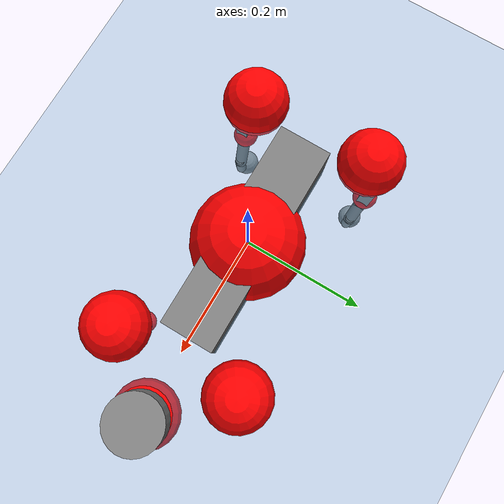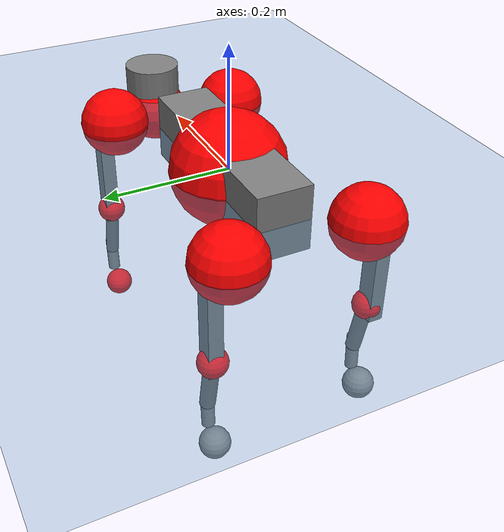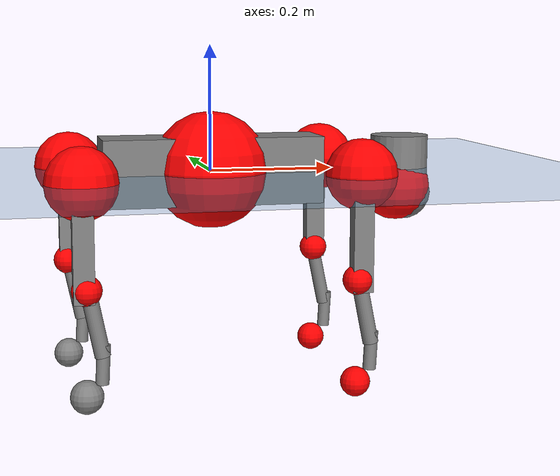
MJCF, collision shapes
<mujoco model="go2">
  <compiler angle="radian" assetdir="assets" balanceinertia="true" inertiafromgeom="false"/>

  <option timestep="0.005" density="1.2" viscosity="2e-05"/>

  <size nkey="1"/>

  <visual>
    <quality shadowsize="8192"/>
    <map shadowclip="0.5"/>
  </visual>

  <default>
    <default class="/">
      <geom contype="0" conaffinity="0" group="1" solref="-1000 -80"/>
      <site size="0.01 0.005 0.005" group="5"/>
      <general forcelimited="true" biastype="affine" gainprm="20" biasprm="0 -20 -0.5"/>
      <default class="go2">
        <joint armature="0.01" damping="0.01" frictionloss="0.2"/>
        <geom condim="1" margin="0.001"/>
        <default class="visual">
          <geom type="mesh" group="2"/>
        </default>
        <default class="collision">
          <geom group="3"/>
          <default class="foot">
            <geom size="0.022 0 0" condim="6" priority="1" friction="0.8 0.02 0.01" solimp="0.015 1 0.022"/>
          </default>
        </default>
        <default class="reward_collision_sphere">
          <geom group="5" rgba="1 0 0 1"/>
        </default>
      </default>
    </default>
  </default>

  <asset>
    <texture type="skybox" colorspace="auto" name="//unnamed_texture_0" builtin="gradient" rgb1="0.95 0.95 0.95" rgb2="0.95 0.95 0.95" width="100" height="600"/>
    <texture type="2d" colorspace="auto" name="texplane" builtin="checker" rgb1="0.345 0.575 0.748" rgb2="0.345 0.575 0.748" markrgb="1 1 1" width="512" height="512"/>
    <material name="MatPlane" class="/" texture="texplane" texuniform="true" texrepeat="2 2" specular="0.9"/>
    <material name="metal" class="/" rgba="0.9 0.95 0.95 1"/>
    <material name="black" class="/" rgba="0 0 0 1"/>
    <material name="white" class="/"/>
    <material name="gray" class="/" rgba="0.671705 0.692426 0.77427 1"/>
    <mesh name="base_0" class="/" file="base_0.obj"/>
    <mesh name="base_1" class="/" file="base_1.obj"/>
    <mesh name="base_2" class="/" file="base_2.obj"/>
    <mesh name="base_3" class="/" file="base_3.obj"/>
    <mesh name="base_4" class="/" file="base_4.obj"/>
    <mesh name="hip_0" class="/" file="hip_0.obj"/>
    <mesh name="hip_1" class="/" file="hip_1.obj"/>
    <mesh name="thigh_0" class="/" file="thigh_0.obj"/>
    <mesh name="thigh_1" class="/" file="thigh_1.obj"/>
    <mesh name="thigh_mirror_0" class="/" file="thigh_mirror_0.obj"/>
    <mesh name="thigh_mirror_1" class="/" file="thigh_mirror_1.obj"/>
    <mesh name="calf_0" class="/" file="calf_0.obj"/>
    <mesh name="calf_1" class="/" file="calf_1.obj"/>
    <mesh name="calf_mirror_0" class="/" file="calf_mirror_0.obj"/>
    <mesh name="calf_mirror_1" class="/" file="calf_mirror_1.obj"/>
    <mesh name="foot" class="/" file="foot.obj"/>
  </asset>

  <worldbody>
    <geom name="floor" class="/" size="100 100 0.125" type="plane" group="0" material="MatPlane"/>
    <light name="toplight_shadow" class="/" pos="0 0 5" dir="0.0990148 0.0990148 -0.990148" type="directional" ambient="0.04 0.04 0.04" diffuse="0.55 0.55 0.55" specular="0.12 0.12 0.12"/>
    <light name="toplight_fill" class="/" pos="0 0 5" dir="0.0990148 0.0990148 -0.990148" type="directional" castshadow="false" ambient="0.04 0.04 0.04" diffuse="0.3 0.3 0.3" specular="0.08 0.08 0.08"/>
    <body name="trunk" childclass="go2" pos="0.000148036 3.39347e-05 0.00196601" quat="1 -0.000186936 -0.000175992 -0.000343456">
      <inertial pos="0.0252159 -0.0055105 -0.00698414" quat="0.000179935 0.713689 -0.00168887 0.70046" mass="5.78341" diaginertia="0.172055 0.068903 0.00619353"/>
      <joint name="//unnamed_joint_0" type="free" armature="0" damping="0" frictionloss="0"/>
      <geom name="//unnamed_geom_1" class="visual" material="black" mesh="base_0"/>
      <geom name="//unnamed_geom_2" class="visual" material="black" mesh="base_1"/>
      <geom name="//unnamed_geom_3" class="visual" material="black" mesh="base_2"/>
      <geom name="//unnamed_geom_4" class="visual" material="white" mesh="base_3"/>
      <geom name="//unnamed_geom_5" class="visual" material="gray" mesh="base_4"/>
      <geom name="trunk_1" class="collision" size="0.175757 0.0436824 0.0532598" type="box"/>
      <geom name="trunk_2" class="collision" size="0.0467191 0.0420472" pos="0.316997 0 0.00762575" type="cylinder"/>
      <geom name="trunk_3" class="collision" size="0.043916" pos="0.325895 0 -0.0457545"/>
      <geom name="//unnamed_geom_9" class="reward_collision_sphere" size="0.0934382"/>
      <geom name="//unnamed_geom_10" class="reward_collision_sphere" size="0.0560629" pos="0.311436 0 -0.0343159"/>
      <site name="imu" pos="-0.0208123 0.00130656 0.0387809" size="0.00934382"/>
      <camera name="track" pos="0 -1.85661 0" quat="0.707107 0.707107 0 0" mode="trackcom"/>
      <camera name="ego_camera" pos="0.347028 0 0.0343159" quat="-0.5 -0.5 0.5 0.5"/>
      <body name="FL_hip" pos="0.212322 0.0443202 0.00542512" quat="1 0.000124054 0.000518811 -0.000770537">
        <inertial pos="-0.00202245 0.000927242 -0.000125341" quat="0.489766 0.501217 0.513693 0.495005" mass="0.525821" diaginertia="0.00147565 0.000401491 0.000120107"/>
        <joint name="FL_hip_joint" pos="0 0 0" axis="1 -0.00070496 0.00030432" stiffness="0.00534356" range="-1.06458 1.04199" armature="0.00888302" damping="0.00602146" frictionloss="0.219673"/>
        <geom name="//unnamed_geom_11" class="visual" material="metal" mesh="hip_0"/>
        <geom name="//unnamed_geom_12" class="visual" material="gray" mesh="hip_1"/>
        <geom name="//unnamed_geom_13" class="collision" size="0.0429816 0.0186876" pos="0 0.0742642 0" quat="0.707107 0.707107 0 0" type="cylinder"/>
        <geom name="//unnamed_geom_14" class="reward_collision_sphere" size="0.0560629" pos="0 0.0649812 0"/>
        <body name="FL_thigh" pos="-0.0015775 0.0880704 0.00122387" quat="1 -0.000503803 -0.000181383 0.000426277">
          <inertial pos="-0.00495938 -0.020251 -0.0247513" quat="0.832126 0.0874979 -0.0204335 0.547259" mass="1.01766" diaginertia="0.009987 0.00409625 0.00025733"/>
          <joint name="FL_thigh_joint" pos="0 0 0" axis="-0.0018298 0.999998 0.000722033" range="-1.5459 3.50753" armature="0.0101589" damping="0.0109044" frictionloss="0.205727"/>
          <geom name="//unnamed_geom_15" class="visual" material="metal" mesh="thigh_0"/>
          <geom name="//unnamed_geom_16" class="visual" material="gray" mesh="thigh_1"/>
          <geom name="//unnamed_geom_17" class="collision" size="0.0995117 0.0114462 0.0158845" pos="0 0 -0.0812142" quat="0.707107 0 0.707107 0" type="box"/>
          <body name="FL_calf" pos="-0.00119027 -0.00180342 -0.164892" quat="0.999997 7.71587e-05 0.00163531 0.00192118">
            <inertial pos="0.00543124 -0.000436244 -0.106748" quat="0.7107 0.0010391 -0.0041928 0.703482" mass="0.199205" diaginertia="0.00252653 0.00104511 1.4405e-05"/>
            <joint name="FL_calf_joint" pos="0 0 0" axis="0.00208739 0.999993 -0.00317437" stiffness="0.00795279" range="-2.68305 -0.882344" armature="0.00907464" damping="0" frictionloss="0.205521"/>
            <geom name="//unnamed_geom_18" class="visual" material="gray" mesh="calf_0"/>
            <geom name="//unnamed_geom_19" class="visual" material="black" mesh="calf_1"/>
            <geom name="FL_calf0" class="collision" size="0.0112126 0.0560629" pos="0.00889816 0 -0.0457545" quat="0.994493 0 -0.104807 0" type="cylinder"/>
            <geom name="//unnamed_geom_21" class="collision" size="0.0102782 0.0303674" pos="0.0222454 0 -0.112861" quat="0.999688 0 0.0249974 0" type="cylinder"/>
            <geom name="//unnamed_geom_22" class="visual" pos="0 0 -0.162428" quat="1 0 0 0" material="black" mesh="foot"/>
            <geom name="FL_foot" class="foot" size="0.0164393" pos="-0.00222454 0 -0.162428"/>
            <geom name="//unnamed_geom_24" class="reward_collision_sphere" size="0.0233596"/>
            <geom name="//unnamed_geom_25" class="reward_collision_sphere" size="0.0233596" pos="-0.00222454 0 -0.162428"/>
            <site name="FL_foot" class="foot" pos="-0.00222454 0 -0.162428" size="0.00934382"/>
          </body>
        </body>
      </body>
      <body name="FR_hip" pos="0.217168 -0.0429412 -0.000835939" quat="0.999999 -0.00130509 0.000327175 0.00074738">
        <inertial pos="-0.00516305 -3.9341e-05 -0.002847" quat="0.49775 0.504543 0.498536 0.499143" mass="0.597391" diaginertia="0.00155537 0.000432494 0.000123198"/>
        <joint name="FR_hip_joint" pos="0 0 0" axis="0.99996 3.72734e-05 0.00890277" range="-1.10381 1.14643" armature="0.00915558" damping="0.0176033" frictionloss="0.197744"/>
        <geom name="//unnamed_geom_26" class="visual" pos="0 1.44376e-09 6.19257e-08" quat="4.63268e-05 1 0 0" material="metal" mesh="hip_0"/>
        <geom name="//unnamed_geom_27" class="visual" pos="0 2.3405e-09 -1.53166e-07" quat="4.63268e-05 1 0 0" material="gray" mesh="hip_1"/>
        <geom name="//unnamed_geom_28" class="collision" size="0.0429816 0.0186876" pos="0 -0.0742642 0" quat="0.707107 0.707107 0 0" type="cylinder"/>
        <geom name="//unnamed_geom_29" class="reward_collision_sphere" size="0.0560629" pos="0 -0.0649812 0"/>
        <body name="FR_thigh" pos="-0.00617324 -0.0896612 0.0012009" quat="1 -0.000709018 -0.000471548 0.000386577">
          <inertial pos="-0.00237815 0.018363 -0.02433" quat="0.55335 -0.0179461 0.0855255 0.828352" mass="0.860419" diaginertia="0.00987594 0.00366011 0.00021417"/>
          <joint name="FR_thigh_joint" pos="0 0 0" axis="0.0102291 -0.999574 0.0273336" stiffness="0.0034198" range="-3.6256 1.66973" armature="0.00955602" damping="0.0203085" frictionloss="0.166152"/>
          <geom name="//unnamed_geom_30" class="visual" material="metal" mesh="thigh_mirror_0"/>
          <geom name="//unnamed_geom_31" class="visual" material="gray" mesh="thigh_mirror_1"/>
          <geom name="//unnamed_geom_32" class="collision" size="0.0995117 0.0114462 0.0158845" pos="0 0 -0.0812142" quat="0.707107 0 0.707107 0" type="box"/>
          <body name="FR_calf" pos="-0.0051482 0.00222016 -0.162471" quat="0.999999 0.000249186 -0.00115574 -0.000121194">
            <inertial pos="0.00588203 -0.00165008 -0.113934" quat="0.699667 0.00326496 0.00322749 0.714454" mass="0.212541" diaginertia="0.00249463 0.000992004 1.34831e-05"/>
            <joint name="FR_calf_joint" pos="0 0 0" axis="0.0261156 -0.999318 0.0260886" range="0.876514 2.79146" armature="0.00909219" damping="0.0159796" frictionloss="0.250027"/>
            <geom name="//unnamed_geom_33" class="visual" material="gray" mesh="calf_mirror_0"/>
            <geom name="//unnamed_geom_34" class="visual" material="black" mesh="calf_mirror_1"/>
            <geom name="FR_calf0" class="collision" size="0.012147 0.0560629" pos="0.0111227 0 -0.0457545" quat="0.995004 0 -0.0998334 0" type="cylinder"/>
            <geom name="//unnamed_geom_36" class="collision" size="0.0102782 0.0303674" pos="0.0222454 0 -0.112861" quat="0.999688 0 0.0249974 0" type="cylinder"/>
            <geom name="//unnamed_geom_37" class="visual" pos="0 0 -0.162428" quat="1 0 0 0" material="black" mesh="foot"/>
            <geom name="FR_foot" class="foot" size="0.0220296" pos="-0.00222454 0 -0.162428"/>
            <geom name="//unnamed_geom_39" class="reward_collision_sphere" size="0.0233596"/>
            <geom name="//unnamed_geom_40" class="reward_collision_sphere" size="0.0233596" pos="-0.00222454 0 -0.162428"/>
            <site name="FR_foot" class="foot" pos="-0.00222454 0 -0.162428" size="0.00934382"/>
          </body>
        </body>
      </body>
      <body name="RL_hip" pos="-0.217734 0.0406781 -0.000491965" quat="0.999999 -0.00161078 -7.21862e-05 -0.000410284">
        <inertial pos="0.00574487 0.00555127 0.002546" quat="0.497769 0.514152 0.47001 0.516686" mass="0.600949" diaginertia="0.00153255 0.000403521 0.000122521"/>
        <joint name="RL_hip_joint" pos="0 0 0" axis="-0.999963 -0.00153836 -0.00841616" stiffness="0.0143137" range="-1.00183 1.04222" armature="0.00903138" damping="0.0126227" frictionloss="0.187444"/>
        <geom name="//unnamed_geom_41" class="visual" pos="-3.0464e-09 0 -5.97165e-07" quat="4.63268e-05 0 1 0" material="metal" mesh="hip_0"/>
        <geom name="//unnamed_geom_42" class="visual" pos="-4.93858e-09 0 -5.296e-07" quat="4.63268e-05 0 1 0" material="gray" mesh="hip_1"/>
        <geom name="//unnamed_geom_43" class="collision" size="0.0429816 0.0186876" pos="0 0.0742642 0" quat="0.707107 0.707107 0 0" type="cylinder"/>
        <geom name="//unnamed_geom_44" class="reward_collision_sphere" size="0.0560629" pos="0 0.0649812 0"/>
        <body name="RL_thigh" pos="-0.000851447 0.0921202 0.0002884" quat="1 -2.44928e-05 -1.16851e-05 1.81803e-05">
          <inertial pos="-0.00559471 -0.0188045 -0.0247654" quat="0.832512 0.0818302 -0.0209391 0.547531" mass="0.914884" diaginertia="0.00920459 0.00378586 0.000212988"/>
          <joint name="RL_thigh_joint" pos="0 0 0" axis="0.00101626 0.99989 0.014772" range="-0.523092 4.5214" armature="0.00934445" damping="0.00267776" frictionloss="0.183559"/>
          <geom name="//unnamed_geom_45" class="visual" material="metal" mesh="thigh_0"/>
          <geom name="//unnamed_geom_46" class="visual" material="gray" mesh="thigh_1"/>
          <geom name="//unnamed_geom_47" class="collision" size="0.0995117 0.0114462 0.0158845" pos="0 0 -0.0812142" quat="0.707107 0 0.707107 0" type="box"/>
          <body name="RL_calf" pos="-0.00267934 -0.000341624 -0.162897" quat="0.999999 -0.000204332 -0.00110587 -0.00120592">
            <inertial pos="0.00426037 -0.00206734 -0.106185" quat="0.710688 0.00278671 -0.00478176 0.703486" mass="0.188357" diaginertia="0.00225274 0.000862044 1.13129e-05"/>
            <joint name="RL_calf_joint" pos="0 0 0" axis="-0.005762 0.999972 -0.00477723" stiffness="0.00325372" range="-2.71317 -0.689447" armature="0.00985597" damping="0" frictionloss="0.190011"/>
            <geom name="//unnamed_geom_48" class="visual" material="gray" mesh="calf_0"/>
            <geom name="//unnamed_geom_49" class="visual" material="black" mesh="calf_1"/>
            <geom name="RL_calf0" class="collision" size="0.012147 0.0560629" pos="0.0111227 0 -0.0457545" quat="0.995004 0 -0.0998334 0" type="cylinder"/>
            <geom name="//unnamed_geom_51" class="collision" size="0.0102782 0.0303674" pos="0.0222454 0 -0.112861" quat="0.999688 0 0.0249974 0" type="cylinder"/>
            <geom name="//unnamed_geom_52" class="visual" pos="0 0 -0.162428" quat="1 0 0 0" material="black" mesh="foot"/>
            <geom name="RL_foot" class="foot" size="0.0243964" pos="-0.00222454 0 -0.162428"/>
            <geom name="//unnamed_geom_54" class="reward_collision_sphere" size="0.0233596"/>
            <geom name="//unnamed_geom_55" class="reward_collision_sphere" size="0.0233596" pos="-0.00222454 0 -0.162428"/>
            <site name="RL_foot" class="foot" pos="-0.00222454 0 -0.162428" size="0.00934382"/>
          </body>
        </body>
      </body>
      <body name="RR_hip" pos="-0.214536 -0.0454953 -0.00264763" quat="0.999998 0.00194452 0.000437104 0.000377674">
        <inertial pos="0.00826168 -0.00135548 -0.000830574" quat="0.471476 0.51264 0.499198 0.515472" mass="0.547923" diaginertia="0.00151103 0.00041639 0.000126427"/>
        <joint name="RR_hip_joint" pos="0 0 0" axis="-0.999948 -0.00950173 -0.00373979" range="-0.972072 1.09329" armature="0.0114877" damping="0.0185487" frictionloss="0.177407"/>
        <geom name="//unnamed_geom_56" class="visual" pos="3.04003e-09 1.44376e-09 -6.5909e-07" quat="2.14617e-09 4.63268e-05 4.63268e-05 -1" material="metal" mesh="hip_0"/>
        <geom name="//unnamed_geom_57" class="visual" pos="4.95433e-09 2.3405e-09 -3.76434e-07" quat="2.14617e-09 4.63268e-05 4.63268e-05 -1" material="gray" mesh="hip_1"/>
        <geom name="//unnamed_geom_58" class="collision" size="0.0429816 0.0186876" pos="0 -0.0742642 0" quat="0.707107 0.707107 0 0" type="cylinder"/>
        <geom name="//unnamed_geom_59" class="reward_collision_sphere" size="0.0560629" pos="0 -0.0649812 0"/>
        <body name="RR_thigh" pos="-0.00162929 -0.0872827 0.00560959" quat="1 -0.000816626 0.000200261 -1.62873e-05">
          <inertial pos="-0.00416511 0.0137503 -0.0253826" quat="0.563154 -0.0174044 0.0869174 0.821584" mass="1.03093" diaginertia="0.0108003 0.00434683 0.000240053"/>
          <joint name="RR_thigh_joint" pos="0 0 0" axis="0.00275032 -0.999986 0.00448931" range="-4.51815 0.624491" armature="0.00586646" damping="0.00595978" frictionloss="0.20349"/>
          <geom name="//unnamed_geom_60" class="visual" material="metal" mesh="thigh_mirror_0"/>
          <geom name="//unnamed_geom_61" class="visual" material="gray" mesh="thigh_mirror_1"/>
          <geom name="//unnamed_geom_62" class="collision" size="0.0995117 0.0114462 0.0158845" pos="0 0 -0.0812142" quat="0.707107 0 0.707107 0" type="box"/>
          <body name="RR_calf" pos="0.00466454 0.0030071 -0.162328" quat="0.999999 0.000680397 0.000269679 0.00084932">
            <inertial pos="0.00720012 1.99872e-05 -0.107714" quat="0.700921 -0.0330673 -0.00034753 0.712472" mass="0.207911" diaginertia="0.00260565 0.000983837 1.24781e-05"/>
            <joint name="RR_calf_joint" pos="0 0 0" axis="-0.0159379 -0.999736 -0.0165687" range="0.776615 2.63619" armature="0.00880394" damping="0.00447488" frictionloss="0.20846"/>
            <geom name="//unnamed_geom_63" class="visual" material="gray" mesh="calf_mirror_0"/>
            <geom name="//unnamed_geom_64" class="visual" material="black" mesh="calf_mirror_1"/>
            <geom name="RR_calf0" class="collision" size="0.012147 0.0560629" pos="0.0111227 0 -0.0457545" quat="0.995004 0 -0.0998334 0" type="cylinder"/>
            <geom name="//unnamed_geom_66" class="collision" size="0.0102782 0.0303674" pos="0.0222454 0 -0.112861" quat="0.999688 0 0.0249974 0" type="cylinder"/>
            <geom name="//unnamed_geom_67" class="visual" pos="0 0 -0.162428" quat="1 0 0 0" material="black" mesh="foot"/>
            <geom name="RR_foot" class="foot" size="0.025607" pos="-0.00222454 0 -0.162428"/>
            <geom name="//unnamed_geom_69" class="reward_collision_sphere" size="0.0233596"/>
            <geom name="//unnamed_geom_70" class="reward_collision_sphere" size="0.0233596" pos="-0.00222454 0 -0.162428"/>
            <site name="RR_foot" class="foot" pos="-0.00222454 0 -0.162428" size="0.00934382"/>
          </body>
        </body>
      </body>
    </body>
  </worldbody>

  <contact>
    <pair class="/" geom1="floor" geom2="FL_foot" name="//unnamed_contact_0"/>
    <pair class="/" geom1="floor" geom2="FR_foot" name="//unnamed_contact_1"/>
    <pair class="/" geom1="floor" geom2="RL_foot" name="//unnamed_contact_2"/>
    <pair class="/" geom1="floor" geom2="RR_foot" name="//unnamed_contact_3"/>
  </contact>

  <actuator>
    <general name="FL_hip" class="/" joint="FL_hip_joint" forcerange="-22.4734 22.4734" gainprm="16.2651" biasprm="0 -16.2651 -0.478654"/>
    <general name="FL_thigh" class="/" joint="FL_thigh_joint" forcerange="-27.6838 27.6838" gainprm="16.2651" biasprm="0 -16.2651 -0.478654"/>
    <general name="FL_calf" class="/" joint="FL_calf_joint" forcerange="-45.6968 45.6968" gainprm="16.2651" biasprm="0 -16.2651 -0.478654"/>
    <general name="FR_hip" class="/" joint="FR_hip_joint" forcerange="-20.6375 20.6375" gainprm="16.2651" biasprm="0 -16.2651 -0.478654"/>
    <general name="FR_thigh" class="/" joint="FR_thigh_joint" forcerange="-23.3549 23.3549" gainprm="16.2651" biasprm="0 -16.2651 -0.478654"/>
    <general name="FR_calf" class="/" joint="FR_calf_joint" forcerange="-41.3446 41.3446" gainprm="16.2651" biasprm="0 -16.2651 -0.478654"/>
    <general name="RL_hip" class="/" joint="RL_hip_joint" forcerange="-20.9427 20.9427" gainprm="16.2651" biasprm="0 -16.2651 -0.478654"/>
    <general name="RL_thigh" class="/" joint="RL_thigh_joint" forcerange="-22.1633 22.1633" gainprm="16.2651" biasprm="0 -16.2651 -0.478654"/>
    <general name="RL_calf" class="/" joint="RL_calf_joint" forcerange="-42.4318 42.4318" gainprm="16.2651" biasprm="0 -16.2651 -0.478654"/>
    <general name="RR_hip" class="/" joint="RR_hip_joint" forcerange="-27.4846 27.4846" gainprm="16.2651" biasprm="0 -16.2651 -0.478654"/>
    <general name="RR_thigh" class="/" joint="RR_thigh_joint" forcerange="-20.2298 20.2298" gainprm="16.2651" biasprm="0 -16.2651 -0.478654"/>
    <general name="RR_calf" class="/" joint="RR_calf_joint" forcerange="-39.3003 39.3003" gainprm="16.2651" biasprm="0 -16.2651 -0.478654"/>
  </actuator>

  <sensor>
    <gyro site="imu" name="imu_angular_velocity"/>
    <velocimeter site="imu" name="imu_linear_velocity"/>
    <framelinvel objtype="site" objname="FL_foot" name="FL_foot_global_linear_velocity"/>
    <framelinvel objtype="site" objname="FR_foot" name="FR_foot_global_linear_velocity"/>
    <framelinvel objtype="site" objname="RL_foot" name="RL_foot_global_linear_velocity"/>
    <framelinvel objtype="site" objname="RR_foot" name="RR_foot_global_linear_velocity"/>
  </sensor>

  <keyframe>
    <key name="home" qpos="0 0 0.325 1 0 0 0 0.1 0.8 -1.5 -0.1 -0.8 1.5 -0.1 0.8 -1.5 0.1 -0.8 1.5"/>
  </keyframe>
</mujoco>
